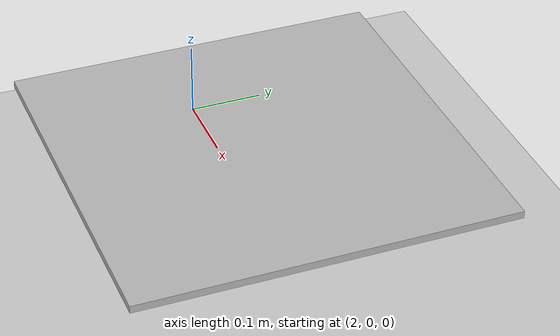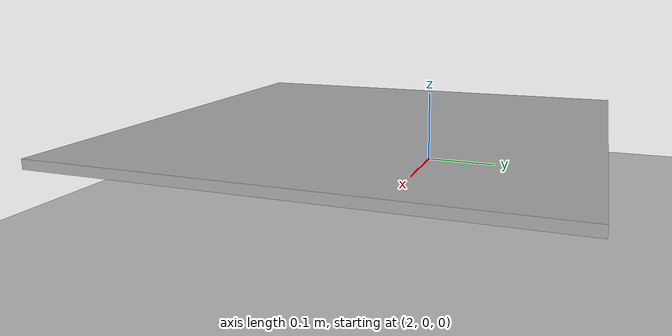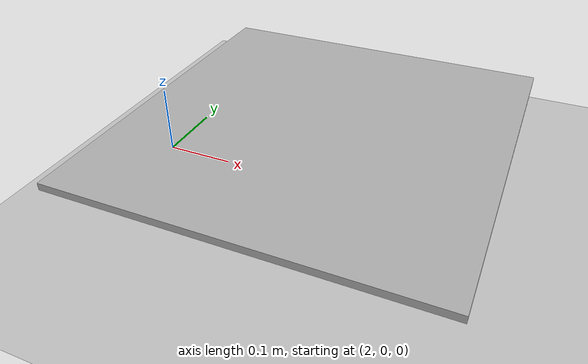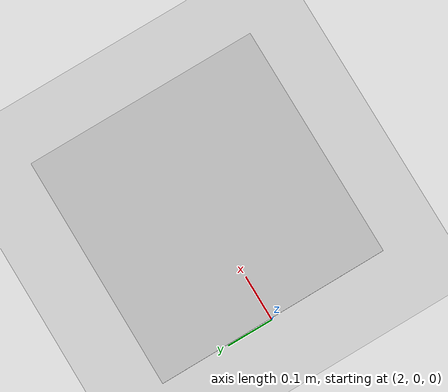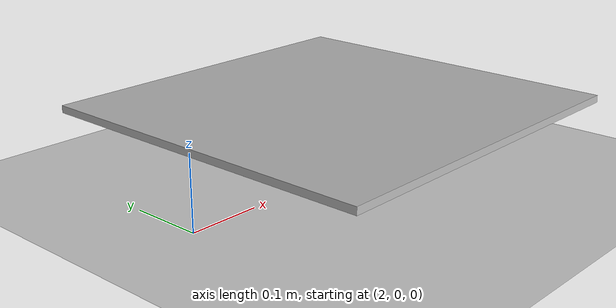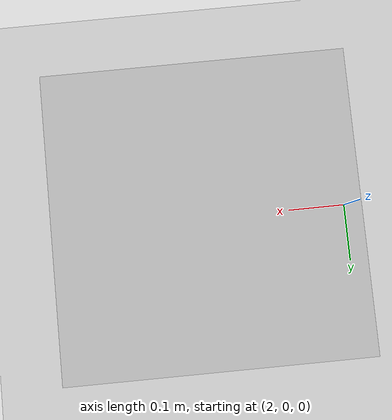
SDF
<?xml version="1.0" ?>
<sdf version="1.5">
  <world name="default">
    <!-- A global light source -->
    <include>
      <uri>model://sun</uri>
    </include>
    <!-- A ground plane -->
    <include>
      <uri>model://ground_plane</uri>
    </include>
    <include>
      <uri>model://asphalt_plane</uri>
    </include>
    <include>
      <uri>model://markerdata_50</uri>
      <pose>2 0 0.1 0 1.5708 0</pose>
    </include>
    <physics name='default_physics' default='0' type='ode'>
      <gravity>0 0 -9.8066</gravity>
      <ode>
        <solver>
          <type>quick</type>
          <iters>10</iters>
          <sor>1.3</sor>
          <use_dynamic_moi_rescaling>0</use_dynamic_moi_rescaling>
        </solver>
        <constraints>
          <cfm>0</cfm>
          <erp>0.2</erp>
          <contact_max_correcting_vel>100</contact_max_correcting_vel>
          <contact_surface_layer>0.001</contact_surface_layer>
        </constraints>
      </ode>
      <max_step_size>0.004</max_step_size>
      <real_time_factor>1</real_time_factor>
      <real_time_update_rate>250</real_time_update_rate>
      <magnetic_field>6.0e-6 2.3e-5 -4.2e-5</magnetic_field>
    </physics>
  </world>
</sdf>

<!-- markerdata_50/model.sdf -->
<sdf version="1.6">
  <model name="MarkerData_50">
    <static>true</static>
    <link name="link">
      <visual name="visual">
        <geometry>
          <mesh>
            <uri>model://markerdata_50/meshes/MarkerData_50.dae</uri>
          <scale>1.0 1.0 1.0</scale></mesh>
        </geometry>
      </visual>
    </link>
  </model>
</sdf>
